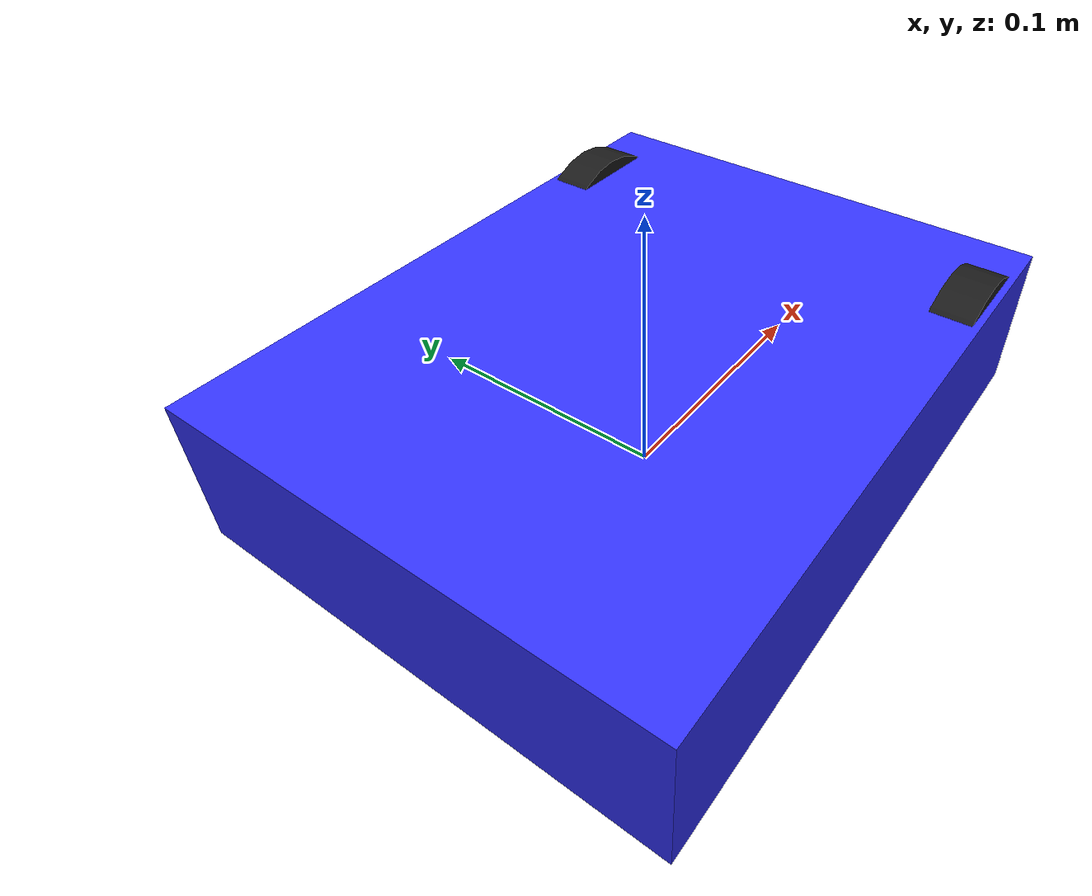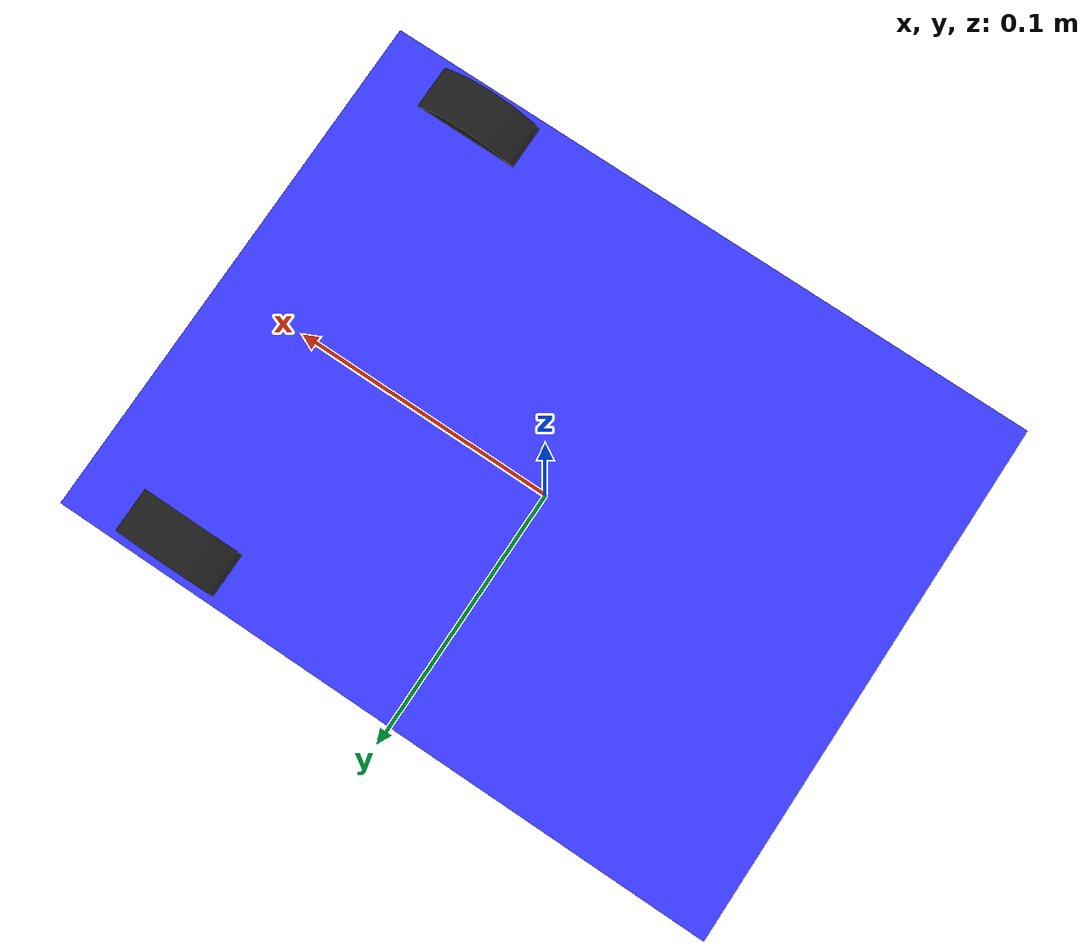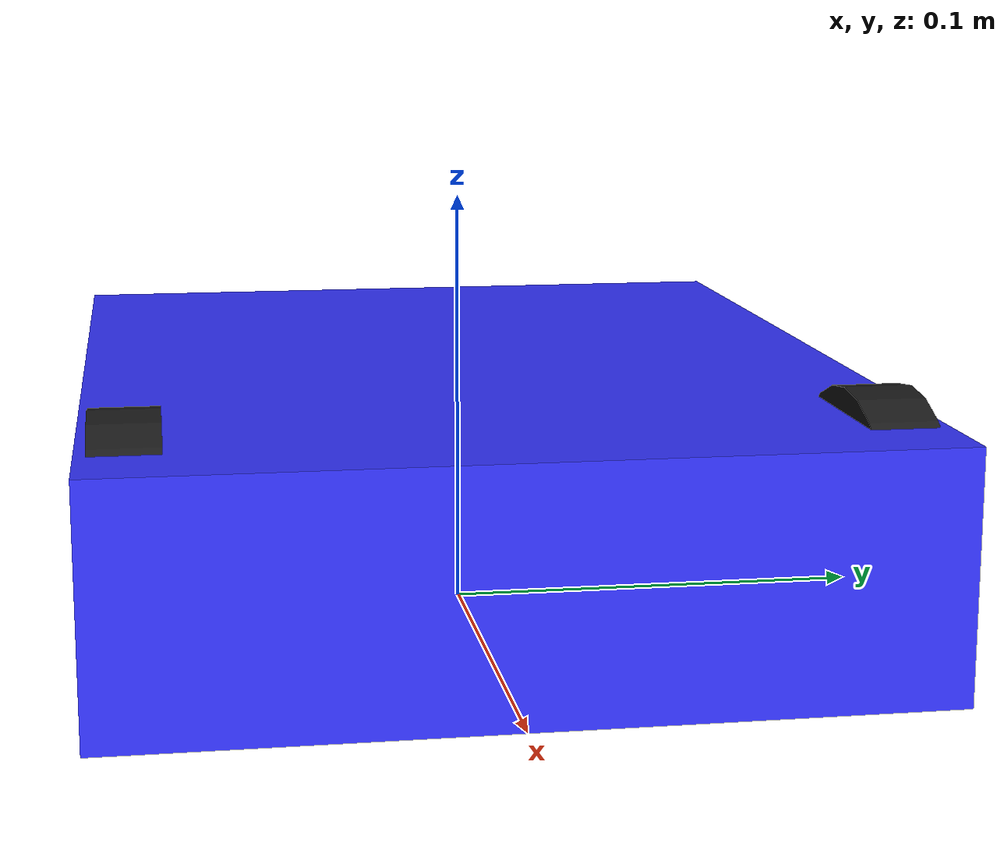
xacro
<?xml version="1.0"?>
<robot xmlns:xacro="http://www.ros.org/wiki/xacro">

    <!-- Define some properties (easy to change later) -->
    <xacro:property name="base_width" value="0.180"/>
    <xacro:property name="base_length" value="0.23"/>
    <xacro:property name="base_height" value="0.055"/>

    <xacro:property name="wheel_radius" value="0.033"/>
    <xacro:property name="wheel_width" value="0.015"/>
    <!-- wheel_track: center-to-center lateral distance; wheel_x_offset: forward from body center -->
    <xacro:property name="wheel_track" value="0.160"/>
    <xacro:property name="wheel_x_offset" value="0.0785"/>

    <!-- Materials for visualization -->
    <material name="white">
        <color rgba="1 1 1 1"/>
    </material>

    <material name="blue">
        <color rgba="0.2 0.2 1 0.9"/>
    </material>

    <material name="black">
        <color rgba="0.1 0.1 0.1 1"/>
    </material>

    <!-- Base footprint (on the ground) -->
    <link name="base_footprint"/>

    <!-- Base link (robot center, elevated above ground) -->
    <link name="base_link">
        <visual>
            <geometry>
                <box size="${base_length} ${base_width} ${base_height}"/>
            </geometry>
            <material name="blue"/>
        </visual>

        <inertial>
            <origin xyz="0 0 0" rpy="0 0 0"/>
            <mass value="5.0"/>
            <inertia ixx="0.1" ixy="0.0" ixz="0.0"
                     iyy="0.1" iyz="0.0" izz="0.1"/>
        </inertial>

        <collision>
            <geometry>
                <box size="${base_length} ${base_width} ${base_height}"/>
            </geometry>
        </collision>
    </link>

    <!-- Joint connecting footprint to base_link -->
    <joint name="base_joint" type="fixed">
        <parent link="base_footprint"/>
        <child link="base_link"/>
        <origin xyz="0 0 ${wheel_radius}" rpy="0 0 0"/>
    </joint>

    <!-- Placeholder wheels (won't move yet, but good for visualization) -->
    <link name="left_wheel">
        <visual>
            <geometry>
                <cylinder radius="${wheel_radius}" length="${wheel_width}"/>
            </geometry>
            <material name="black"/>
            <origin xyz="0 0 0" rpy="${pi/2} 0 0"/>
        </visual>

        <inertial>
            <origin xyz="0 0 0" rpy="0 0 0"/>
            <mass value="0.5"/>
            <inertia ixx="0.01" ixy="0.0" ixz="0.0"
                     iyy="0.01" iyz="0.0" izz="0.01"/>
        </inertial>

        <collision>
            <geometry>
                <cylinder radius="${wheel_radius}" length="${wheel_width}"/>
            </geometry>
            <origin xyz="0 0 0" rpy="${pi/2} 0 0"/>
        </collision>

    </link>

    <link name="right_wheel">
        <visual>
            <geometry>
                <cylinder radius="${wheel_radius}" length="${wheel_width}"/>
            </geometry>
            <material name="black"/>
            <origin xyz="0 0 0" rpy="${pi/2} 0 0"/>
        </visual>

        <inertial>
            <origin xyz="0 0 0" rpy="0 0 0"/>
            <mass value="0.5"/>
            <inertia ixx="0.01" ixy="0.0" ixz="0.0"
                     iyy="0.01" iyz="0.0" izz="0.01"/>
        </inertial>

        <collision>
            <geometry>
                <cylinder radius="${wheel_radius}" length="${wheel_width}"/>
            </geometry>
            <origin xyz="0 0 0" rpy="${pi/2} 0 0"/>
        </collision>

    </link>

    <joint name="left_wheel_joint" type="continuous">
        <parent link="base_link"/>
        <child link="left_wheel"/>
        <origin xyz="${wheel_x_offset} ${wheel_track/2} 0" rpy="0 0 0"/>
        <axis xyz="0 1 0"/>
    </joint>

    <joint name="right_wheel_joint" type="continuous">
        <parent link="base_link"/>
        <child link="right_wheel"/>
        <origin xyz="${wheel_x_offset} -${wheel_track/2} 0" rpy="0 0 0"/>
        <axis xyz="0 1 0"/>
    </joint>

    <!-- Gazebo-specific materials (RViz colors don't work in Gazebo) -->
    <gazebo reference="base_link">
        <material>Gazebo/Blue</material>
    </gazebo>

    <gazebo reference="left_wheel">
        <material>Gazebo/Black</material>
    </gazebo>

    <gazebo reference="right_wheel">
        <material>Gazebo/Black</material>
    </gazebo>

</robot>
